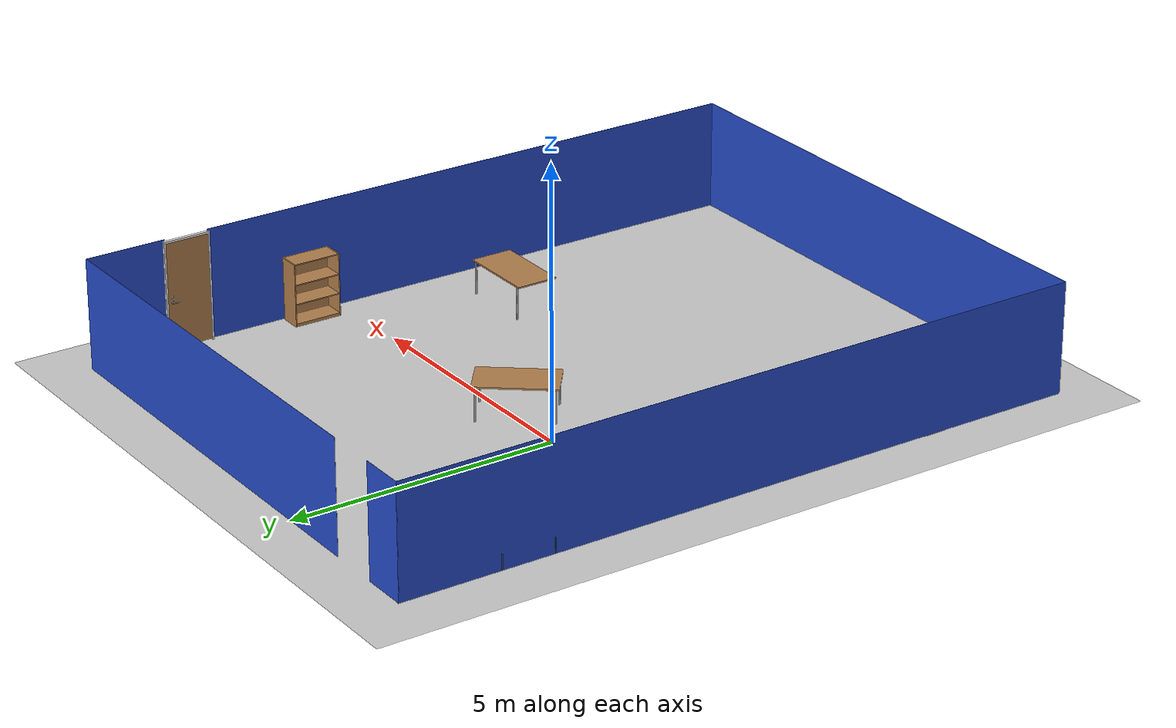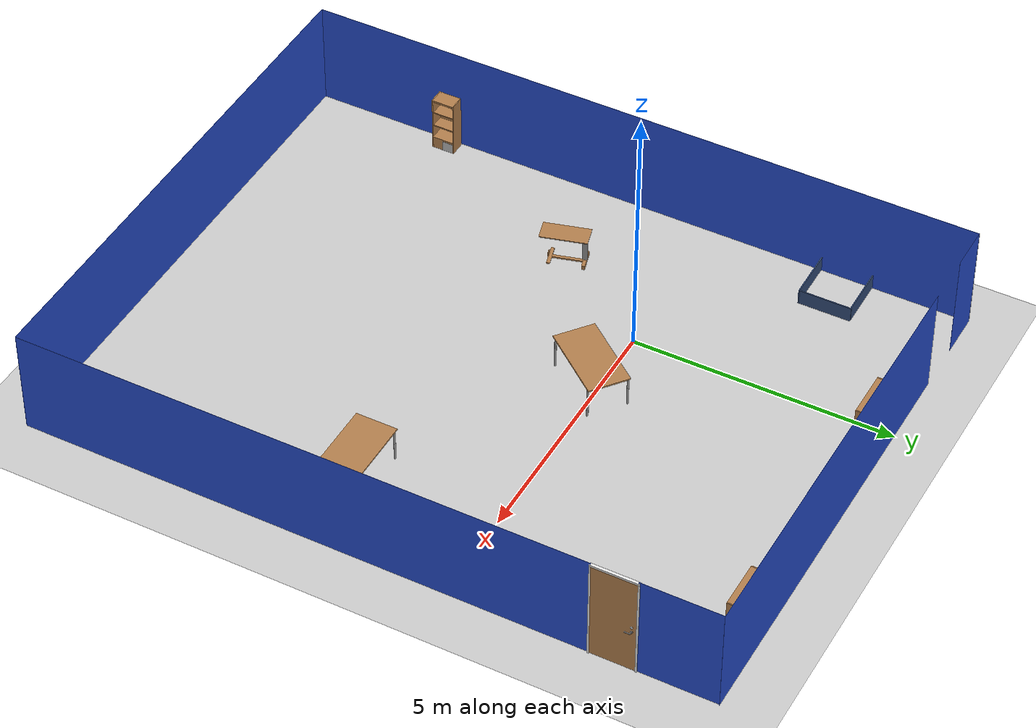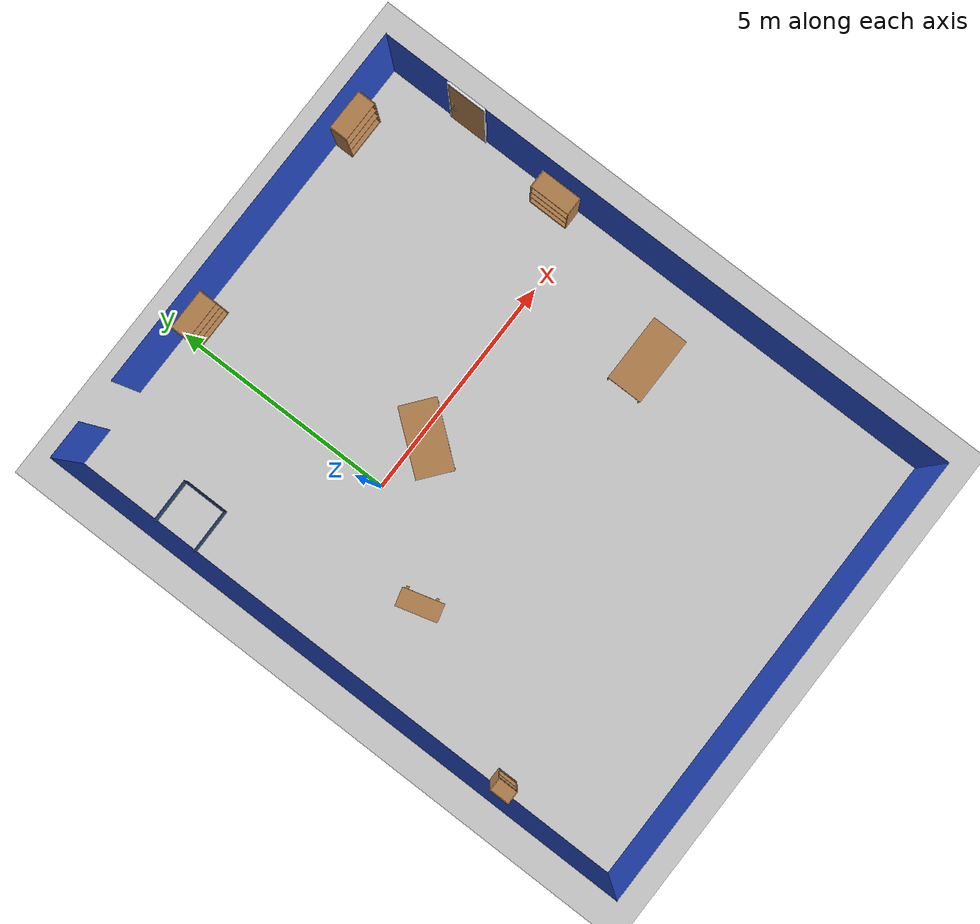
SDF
<sdf version="1.6">
 <world name="default">
  <light name="sun" type="directional">
   <pose>0 0 10 0 -0 0</pose>
   <diffuse>0.8 0.8 0.8 1</diffuse>
   <specular>0.2 0.2 0.2 1</specular>
   <attenuation>
    <range>1000</range>
    <constant>0.9</constant>
    <linear>0.01</linear>
    <quadratic>0.001</quadratic>
   </attenuation>
   <direction>-0.5 0.1 -0.9</direction>
  </light>
  <model name="ground_plane">
   <static>1</static>
   <link name="link">
    <collision name="collision">
     <geometry><plane><normal>0 0 1</normal><size>100 100</size></plane></geometry>
     <surface><friction><ode><mu>100</mu><mu2>50</mu2></ode></friction></surface>
    </collision>
    <visual name="visual">
     <cast_shadows>0</cast_shadows>
     <geometry><plane><normal>0 0 1</normal><size>100 100</size></plane></geometry>
     <material>
      <script><uri>file://media/materials/scripts/gazebo.material</uri><name>Gazebo/Grey</name></script>
     </material>
    </visual>
   </link>
  </model>
  <gravity>0 0 -9.8</gravity>
  <magnetic_field>6e-06 2.3e-05 -4.2e-05</magnetic_field>
  <atmosphere type="adiabatic"/>
  <physics name="default_physics" default="0" type="ode">
   <max_step_size>0.001</max_step_size>
   <real_time_factor>1</real_time_factor>
   <real_time_update_rate>1000</real_time_update_rate>
  </physics>
  <scene><ambient>0.4 0.4 0.4 1</ambient><background>0.7 0.7 0.7 1</background><shadows>1</shadows></scene>
  <spherical_coordinates>
   <surface_model>EARTH_WGS84</surface_model>
   <latitude_deg>0</latitude_deg>
   <longitude_deg>0</longitude_deg>
   <elevation>0</elevation>
   <heading_deg>0</heading_deg>
  </spherical_coordinates>
  <model name="door_55_900_2090">
   <link name="link">
    <pose>0 0.45 0 0 -0 0</pose>
    <inertial>
     <mass>50</mass>
     <inertia><ixx>1</ixx><ixy>0</ixy><ixz>0</ixz><iyy>1</iyy><iyz>0</iyz><izz>1</izz></inertia>
    </inertial>
    <visual name="door">
     <pose>0 0 1.05 0 -0 0</pose>
     <geometry><box><size>0.055 0.83 2</size></box></geometry>
     <material>
      <script><uri>model://base_materials/wood/scripts/wood.material</uri><name>base_materials/wood</name></script>
     </material>
    </visual>
    <collision name="collision_door">
     <pose>0 0 1.05 0 -0 0</pose>
     <geometry><box><size>0.055 0.83 2</size></box></geometry>
    </collision>
    <visual name="right_frame">
     <pose>0 0.4325 1.025 0 -0 0</pose>
     <geometry><box><size>0.055 0.035 2.05</size></box></geometry>
     <material>
      <script><uri>model://base_materials/color/scripts</uri><name>hsr_color/white</name></script>
     </material>
    </visual>
    <collision name="collision_right_frame">
     <pose>0 0.4325 1.025 0 -0 0</pose>
     <geometry><box><size>0.055 0.035 2.05</size></box></geometry>
    </collision>
    <visual name="left_frame">
     <pose>0 -0.4325 1.025 0 -0 0</pose>
     <geometry><box><size>0.055 0.035 2.05</size></box></geometry>
     <material>
      <script><uri>model://base_materials/color/scripts</uri><name>hsr_color/white</name></script>
     </material>
    </visual>
    <collision name="collision_left_frame">
     <pose>0 -0.4325 1.025 0 -0 0</pose>
     <geometry><box><size>0.055 0.035 2.05</size></box></geometry>
    </collision>
    <visual name="top_frame">
     <pose>0 0 2.07 0 -0 0</pose>
     <geometry><box><size>0.055 0.9 0.04</size></box></geometry>
     <material>
      <script><uri>model://base_materials/color/scripts</uri><name>hsr_color/white</name></script>
     </material>
    </visual>
    <collision name="collision_top_frame">
     <pose>0 0 2.07 0 -0 0</pose>
     <geometry><box><size>0.055 0.9 0.04</size></box></geometry>
    </collision>
    <visual name="handle_front">
     <pose>0.0775 0.285 0.93 1.5708 -0 0</pose>
     <geometry><cylinder><radius>0.01</radius><length>0.1</length></cylinder></geometry>
     <material>
      <script><uri>model://base_materials/color/scripts</uri><name>hsr_color/grey</name></script>
     </material>
    </visual>
    <collision name="collision_handle_front">
     <pose>0.0775 0.285 0.93 1.5708 -0 0</pose>
     <geometry><cylinder><radius>0.01</radius><length>0.1</length></cylinder></geometry>
    </collision>
    <visual name="handle_back">
     <pose>-0.0775 0.285 0.93 1.5708 -0 0</pose>
     <geometry><cylinder><radius>0.01</radius><length>0.1</length></cylinder></geometry>
     <material>
      <script><uri>model://base_materials/color/scripts</uri><name>hsr_color/grey</name></script>
     </material>
    </visual>
    <collision name="collision_handle_back">
     <pose>-0.0775 0.285 0.93 1.5708 -0 0</pose>
     <geometry><cylinder><radius>0.01</radius><length>0.1</length></cylinder></geometry>
    </collision>
    <visual name="handle_center1">
     <pose>0 0.335 0.93 3.14159 1.57079 3.14159</pose>
     <geometry><cylinder><radius>0.01</radius><length>0.155</length></cylinder></geometry>
     <material>
      <script><uri>model://base_materials/color/scripts</uri><name>hsr_color/grey</name></script>
     </material>
    </visual>
    <collision name="collision_center1">
     <pose>0 0.335 0.93 3.14159 1.57079 3.14159</pose>
     <geometry><cylinder><radius>0.01</radius><length>0.155</length></cylinder></geometry>
    </collision>
    <visual name="handle_center2">
     <pose>0 0.335 0.93 3.14159 1.57079 3.14159</pose>
     <geometry><cylinder><radius>0.025</radius><length>0.075</length></cylinder></geometry>
     <material>
      <script><uri>model://base_materials/color/scripts</uri><name>hsr_color/grey</name></script>
     </material>
    </visual>
    <collision name="collision_center1">
     <pose>0 0.335 0.93 3.14159 1.57079 3.14159</pose>
     <geometry><cylinder><radius>0.025</radius><length>0.075</length></cylinder></geometry>
    </collision>
    <visual name="handle_front_right_corner">
     <pose>0.0775 0.335 0.93 0 -0 0</pose>
     <geometry><sphere><radius>0.01</radius></sphere></geometry>
     <material>
      <script><uri>model://base_materials/color/scripts</uri><name>hsr_color/grey</name></script>
     </material>
    </visual>
    <collision name="collision_handle_front_right_corner">
     <pose>0.0775 0.335 0.93 0 -0 0</pose>
     <geometry><sphere><radius>0.01</radius></sphere></geometry>
    </collision>
    <visual name="handle_front_left_corner">
     <pose>0.0775 0.235 0.93 0 -0 0</pose>
     <geometry><sphere><radius>0.01</radius></sphere></geometry>
     <material>
      <script><uri>model://base_materials/color/scripts</uri><name>hsr_color/grey</name></script>
     </material>
    </visual>
    <collision name="collision_handle_front_left_corner">
     <pose>0.0775 0.235 0.93 0 -0 0</pose>
     <geometry><sphere><radius>0.01</radius></sphere></geometry>
    </collision>
    <visual name="handle_back_right_corner">
     <pose>-0.0775 0.335 0.93 0 -0 0</pose>
     <geometry><sphere><radius>0.01</radius></sphere></geometry>
     <material>
      <script><uri>model://base_materials/color/scripts</uri><name>hsr_color/grey</name></script>
     </material>
    </visual>
    <collision name="collision_handle_back_right_corner">
     <pose>-0.0775 0.335 0.93 0 -0 0</pose>
     <geometry><sphere><radius>0.01</radius></sphere></geometry>
    </collision>
    <visual name="handle_back_left_corner">
     <pose>-0.0775 0.235 0.93 0 -0 0</pose>
     <geometry><sphere><radius>0.01</radius></sphere></geometry>
     <material>
      <script><uri>model://base_materials/color/scripts</uri><name>hsr_color/white</name></script>
     </material>
    </visual>
    <collision name="collision_handle_back_left_corner">
     <pose>-0.0775 0.235 0.93 0 -0 0</pose>
     <geometry><sphere><radius>0.01</radius></sphere></geometry>
    </collision>
    <visual name="handle_lock1">
     <pose>0 0.335 1.03 0 -0 0</pose>
     <geometry><box><size>0.075 0.005 0.04</size></box></geometry>
     <material>
      <script><uri>model://base_materials/color/scripts</uri><name>hsr_color/white</name></script>
     </material>
    </visual>
    <collision name="collision_handle_lock1">
     <pose>0 0.335 1.03 0 -0 0</pose>
     <geometry><box><size>0.075 0.005 0.04</size></box></geometry>
    </collision>
    <visual name="handle_lock2">
     <pose>0 0.335 1.03 3.14159 1.57079 3.14159</pose>
     <geometry><cylinder><radius>0.025</radius><length>0.065</length></cylinder></geometry>
     <material>
      <script><uri>model://base_materials/color/scripts</uri><name>hsr_color/white</name></script>
     </material>
    </visual>
    <collision name="collision_handle_lock1">
     <pose>0 0.335 1.03 3.14159 1.57079 3.14159</pose>
     <geometry><cylinder><radius>0.025</radius><length>0.065</length></cylinder></geometry>
    </collision>
    <velocity_decay><linear>0</linear><angular>0</angular></velocity_decay>
   </link>
   <static>1</static>
   <pose>6.79644 2.61344 -0.041685 0 -0 0</pose>
  </model>
  <model name="hcr_shefl_2">
   <link name="link">
    <inertial>
     <mass>5</mass>
     <inertia><ixx>1</ixx><ixy>0</ixy><ixz>0</ixz><iyy>1</iyy><iyz>0</iyz><izz>1</izz></inertia>
    </inertial>
    <visual name="left_board">
     <pose>-0.1475 0.009 -0.598 0 -0 0</pose>
     <geometry><box><size>0.295 0.018 1.196</size></box></geometry>
     <material>
      <script><uri>model://base_materials/wood/scripts/wood.material</uri><name>base_materials/wood</name></script>
     </material>
    </visual>
    <collision name="collision_left_board">
     <pose>-0.1475 0.009 -0.598 0 -0 0</pose>
     <geometry><box><size>0.295 0.018 1.196</size></box></geometry>
    </collision>
    <visual name="right_board">
     <pose>-0.1475 0.441 -0.598 0 -0 0</pose>
     <geometry><box><size>0.295 0.018 1.196</size></box></geometry>
     <material>
      <script><uri>model://base_materials/wood/scripts/wood.material</uri><name>base_materials/wood</name></script>
     </material>
    </visual>
    <collision name="collision_right_board">
     <pose>-0.1475 0.441 -0.598 0 -0 0</pose>
     <geometry><box><size>0.295 0.018 1.196</size></box></geometry>
    </collision>
    <visual name="top_board">
     <pose>-0.1475 0.225 -0.0175 0 -0 0</pose>
     <geometry><box><size>0.295 0.414 0.035</size></box></geometry>
     <material>
      <script><uri>model://base_materials/wood/scripts/wood.material</uri><name>base_materials/wood</name></script>
     </material>
    </visual>
    <collision name="collision_top_board">
     <pose>-0.1475 0.225 -0.0175 0 -0 0</pose>
     <geometry><box><size>0.295 0.414 0.035</size></box></geometry>
    </collision>
    <visual name="1st_shelf">
     <pose>-0.162 0.225 -0.311 0 -0 0</pose>
     <geometry><box><size>0.266 0.414 0.018</size></box></geometry>
     <material>
      <script><uri>model://base_materials/wood/scripts/wood.material</uri><name>base_materials/wood</name></script>
     </material>
    </visual>
    <collision name="collision_1st_shelf">
     <pose>-0.162 0.225 -0.311 0 -0 0</pose>
     <geometry><box><size>0.266 0.414 0.018</size></box></geometry>
    </collision>
    <visual name="2nd_shelf">
     <pose>-0.162 0.225 -0.613 0 -0 0</pose>
     <geometry><box><size>0.266 0.414 0.018</size></box></geometry>
     <material>
      <script><uri>model://base_materials/wood/scripts/wood.material</uri><name>base_materials/wood</name></script>
     </material>
    </visual>
    <collision name="collision_2nd_shelf">
     <pose>-0.162 0.225 -0.613 0 -0 0</pose>
     <geometry><box><size>0.266 0.414 0.018</size></box></geometry>
    </collision>
    <visual name="bottom_board">
     <pose>-0.1475 0.225 -1.0335 0 -0 0</pose>
     <geometry><box><size>0.295 0.414 0.325</size></box></geometry>
     <material>
      <script><uri>model://base_materials/wood/scripts/wood.material</uri><name>base_materials/wood</name></script>
     </material>
    </visual>
    <collision name="collision_bottom_board">
     <pose>-0.1475 0.225 -1.0335 0 -0 0</pose>
     <geometry><box><size>0.295 0.414 0.325</size></box></geometry>
    </collision>
    <visual name="back_board">
     <pose>-0.286 0.225 -0.598 0 -0 0</pose>
     <geometry><box><size>0.018 0.414 1.196</size></box></geometry>
     <material>
      <script><uri>model://base_materials/wood/scripts/wood.material</uri><name>base_materials/wood</name></script>
     </material>
    </visual>
    <collision name="collision_back_board">
     <pose>-0.286 0.225 -0.598 0 -0 0</pose>
     <geometry><box><size>0.018 0.414 1.196</size></box></geometry>
    </collision>
    <visual name="marker_0030">
     <pose>0 0.32 -1.015 0 -0 0</pose>
     <geometry><box><size>0.0001 0.21 0.21</size></box></geometry>
     <material>
      <script>
       <uri>model://hcr_shelf_2/marker/0030/scripts</uri>
       <uri>model://hcr_shelf_2/marker/0030/textures</uri>
       <name>Marker/0030</name>
      </script>
     </material>
    </visual>
    <collision name="collision_marker_0030">
     <pose>0 0.32 -1.015 0 -0 0</pose>
     <geometry><box><size>0.0001 0.21 0.21</size></box></geometry>
    </collision>
    <velocity_decay><linear>0</linear><angular>0</angular></velocity_decay>
   </link>
   <static>1</static>
   <pose>-2.96206 -5.70339 1.09688 0 -0 0</pose>
  </model>
  <model name="bookshelf">
   <static>1</static>
   <link name="link">
    <inertial><mass>1</mass></inertial>
    <collision name="back">
     <pose>0 0.005 0.6 0 -0 0</pose>
     <geometry><box><size>0.9 0.01 1.2</size></box></geometry>
    </collision>
    <visual name="visual1">
     <pose>0 0.005 0.6 0 -0 0</pose>
     <geometry><box><size>0.9 0.01 1.2</size></box></geometry>
     <material>
      <script><uri>file://media/materials/scripts/gazebo.material</uri><name>Gazebo/Wood</name></script>
     </material>
    </visual>
    <collision name="left_side">
     <pose>0.45 -0.195 0.6 0 -0 0</pose>
     <geometry><box><size>0.02 0.4 1.2</size></box></geometry>
    </collision>
    <visual name="visual2">
     <pose>0.45 -0.195 0.6 0 -0 0</pose>
     <geometry><box><size>0.02 0.4 1.2</size></box></geometry>
     <material>
      <script><uri>file://media/materials/scripts/gazebo.material</uri><name>Gazebo/Wood</name></script>
     </material>
    </visual>
    <collision name="right_side">
     <pose>-0.45 -0.195 0.6 0 -0 0</pose>
     <geometry><box><size>0.02 0.4 1.2</size></box></geometry>
    </collision>
    <visual name="visual3">
     <pose>-0.45 -0.195 0.6 0 -0 0</pose>
     <geometry><box><size>0.02 0.4 1.2</size></box></geometry>
     <material>
      <script><uri>file://media/materials/scripts/gazebo.material</uri><name>Gazebo/Wood</name></script>
     </material>
    </visual>
    <collision name="bottom">
     <pose>0 -0.195 0.03 0 -0 0</pose>
     <geometry><box><size>0.88 0.4 0.06</size></box></geometry>
    </collision>
    <visual name="visual4">
     <pose>0 -0.195 0.03 0 -0 0</pose>
     <geometry><box><size>0.88 0.4 0.06</size></box></geometry>
     <material>
      <script><uri>file://media/materials/scripts/gazebo.material</uri><name>Gazebo/Wood</name></script>
     </material>
    </visual>
    <collision name="top">
     <pose>0 -0.195 1.19 0 -0 0</pose>
     <geometry><box><size>0.88 0.4 0.02</size></box></geometry>
    </collision>
    <visual name="visual5">
     <pose>0 -0.195 1.19 0 -0 0</pose>
     <geometry><box><size>0.88 0.4 0.02</size></box></geometry>
     <material>
      <script><uri>file://media/materials/scripts/gazebo.material</uri><name>Gazebo/Wood</name></script>
     </material>
    </visual>
    <collision name="low_shelf">
     <pose>0 -0.195 0.43 0 -0 0</pose>
     <geometry><box><size>0.88 0.4 0.02</size></box></geometry>
    </collision>
    <visual name="visual6">
     <pose>0 -0.195 0.43 0 -0 0</pose>
     <geometry><box><size>0.88 0.4 0.02</size></box></geometry>
     <material>
      <script><uri>file://media/materials/scripts/gazebo.material</uri><name>Gazebo/Wood</name></script>
     </material>
    </visual>
    <collision name="high_shelf">
     <pose>0 -0.195 0.8 0 -0 0</pose>
     <geometry><box><size>0.88 0.4 0.02</size></box></geometry>
    </collision>
    <visual name="visual7">
     <pose>0 -0.195 0.8 0 -0 0</pose>
     <geometry><box><size>0.88 0.4 0.02</size></box></geometry>
     <material>
      <script><uri>file://media/materials/scripts/gazebo.material</uri><name>Gazebo/Wood</name></script>
     </material>
    </visual>
   </link>
   <pose>0.419292 4.96703 0 0 -0 0</pose>
  </model>
  <model name="table">
   <static>1</static>
   <link name="link">
    <collision name="surface">
     <pose>0 0 1 0 -0 0</pose>
     <geometry><box><size>1.5 0.8 0.03</size></box></geometry>
     <surface><friction><ode><mu>0.6</mu><mu2>0.6</mu2></ode></friction></surface>
    </collision>
    <visual name="visual1">
     <pose>0 0 1 0 -0 0</pose>
     <geometry><box><size>1.5 0.8 0.03</size></box></geometry>
     <material>
      <script><uri>file://media/materials/scripts/gazebo.material</uri><name>Gazebo/Wood</name></script>
     </material>
    </visual>
    <collision name="front_left_leg">
     <pose>0.68 0.38 0.5 0 -0 0</pose>
     <geometry><cylinder><radius>0.02</radius><length>1</length></cylinder></geometry>
    </collision>
    <visual name="front_left_leg">
     <pose>0.68 0.38 0.5 0 -0 0</pose>
     <geometry><cylinder><radius>0.02</radius><length>1</length></cylinder></geometry>
     <material>
      <script><uri>file://media/materials/scripts/gazebo.material</uri><name>Gazebo/Grey</name></script>
     </material>
    </visual>
    <collision name="front_right_leg">
     <pose>0.68 -0.38 0.5 0 -0 0</pose>
     <geometry><cylinder><radius>0.02</radius><length>1</length></cylinder></geometry>
    </collision>
    <visual name="front_right_leg">
     <pose>0.68 -0.38 0.5 0 -0 0</pose>
     <geometry><cylinder><radius>0.02</radius><length>1</length></cylinder></geometry>
     <material>
      <script><uri>file://media/materials/scripts/gazebo.material</uri><name>Gazebo/Grey</name></script>
     </material>
    </visual>
    <collision name="back_right_leg">
     <pose>-0.68 -0.38 0.5 0 -0 0</pose>
     <geometry><cylinder><radius>0.02</radius><length>1</length></cylinder></geometry>
    </collision>
    <visual name="back_right_leg">
     <pose>-0.68 -0.38 0.5 0 -0 0</pose>
     <geometry><cylinder><radius>0.02</radius><length>1</length></cylinder></geometry>
     <material>
      <script><uri>file://media/materials/scripts/gazebo.material</uri><name>Gazebo/Grey</name></script>
     </material>
    </visual>
    <collision name="back_left_leg">
     <pose>-0.68 0.38 0.5 0 -0 0</pose>
     <geometry><cylinder><radius>0.02</radius><length>1</length></cylinder></geometry>
    </collision>
    <visual name="back_left_leg">
     <pose>-0.68 0.38 0.5 0 -0 0</pose>
     <geometry><cylinder><radius>0.02</radius><length>1</length></cylinder></geometry>
     <material>
      <script><uri>file://media/materials/scripts/gazebo.material</uri><name>Gazebo/Grey</name></script>
     </material>
    </visual>
   </link>
   <pose>1.2942 -0.166561 -0.380127 0 -0 0.901313</pose>
  </model>
  <model name="bookshelf_clone">
   <static>1</static>
   <link name="link">
    <inertial><mass>1</mass></inertial>
    <collision name="back">
     <pose>0 0.005 0.6 0 -0 0</pose>
     <geometry><box><size>0.9 0.01 1.2</size></box></geometry>
    </collision>
    <visual name="visual1">
     <pose>0 0.005 0.6 0 -0 0</pose>
     <geometry><box><size>0.9 0.01 1.2</size></box></geometry>
     <material>
      <script><uri>file://media/materials/scripts/gazebo.material</uri><name>Gazebo/Wood</name></script>
     </material>
    </visual>
    <collision name="left_side">
     <pose>0.45 -0.195 0.6 0 -0 0</pose>
     <geometry><box><size>0.02 0.4 1.2</size></box></geometry>
    </collision>
    <visual name="visual2">
     <pose>0.45 -0.195 0.6 0 -0 0</pose>
     <geometry><box><size>0.02 0.4 1.2</size></box></geometry>
     <material>
      <script><uri>file://media/materials/scripts/gazebo.material</uri><name>Gazebo/Wood</name></script>
     </material>
    </visual>
    <collision name="right_side">
     <pose>-0.45 -0.195 0.6 0 -0 0</pose>
     <geometry><box><size>0.02 0.4 1.2</size></box></geometry>
    </collision>
    <visual name="visual3">
     <pose>-0.45 -0.195 0.6 0 -0 0</pose>
     <geometry><box><size>0.02 0.4 1.2</size></box></geometry>
     <material>
      <script><uri>file://media/materials/scripts/gazebo.material</uri><name>Gazebo/Wood</name></script>
     </material>
    </visual>
    <collision name="bottom">
     <pose>0 -0.195 0.03 0 -0 0</pose>
     <geometry><box><size>0.88 0.4 0.06</size></box></geometry>
    </collision>
    <visual name="visual4">
     <pose>0 -0.195 0.03 0 -0 0</pose>
     <geometry><box><size>0.88 0.4 0.06</size></box></geometry>
     <material>
      <script><uri>file://media/materials/scripts/gazebo.material</uri><name>Gazebo/Wood</name></script>
     </material>
    </visual>
    <collision name="top">
     <pose>0 -0.195 1.19 0 -0 0</pose>
     <geometry><box><size>0.88 0.4 0.02</size></box></geometry>
    </collision>
    <visual name="visual5">
     <pose>0 -0.195 1.19 0 -0 0</pose>
     <geometry><box><size>0.88 0.4 0.02</size></box></geometry>
     <material>
      <script><uri>file://media/materials/scripts/gazebo.material</uri><name>Gazebo/Wood</name></script>
     </material>
    </visual>
    <collision name="low_shelf">
     <pose>0 -0.195 0.43 0 -0 0</pose>
     <geometry><box><size>0.88 0.4 0.02</size></box></geometry>
    </collision>
    <visual name="visual6">
     <pose>0 -0.195 0.43 0 -0 0</pose>
     <geometry><box><size>0.88 0.4 0.02</size></box></geometry>
     <material>
      <script><uri>file://media/materials/scripts/gazebo.material</uri><name>Gazebo/Wood</name></script>
     </material>
    </visual>
    <collision name="high_shelf">
     <pose>0 -0.195 0.8 0 -0 0</pose>
     <geometry><box><size>0.88 0.4 0.02</size></box></geometry>
    </collision>
    <visual name="visual7">
     <pose>0 -0.195 0.8 0 -0 0</pose>
     <geometry><box><size>0.88 0.4 0.02</size></box></geometry>
     <material>
      <script><uri>file://media/materials/scripts/gazebo.material</uri><name>Gazebo/Wood</name></script>
     </material>
    </visual>
   </link>
   <pose>5.35168 4.95429 0 0 -0 0</pose>
  </model>
  <model name="bookshelf_clone_0">
   <static>1</static>
   <link name="link">
    <inertial><mass>1</mass></inertial>
    <collision name="back">
     <pose>0 0.005 0.6 0 -0 0</pose>
     <geometry><box><size>0.9 0.01 1.2</size></box></geometry>
    </collision>
    <visual name="visual1">
     <pose>0 0.005 0.6 0 -0 0</pose>
     <geometry><box><size>0.9 0.01 1.2</size></box></geometry>
     <material>
      <script><uri>file://media/materials/scripts/gazebo.material</uri><name>Gazebo/Wood</name></script>
     </material>
    </visual>
    <collision name="left_side">
     <pose>0.45 -0.195 0.6 0 -0 0</pose>
     <geometry><box><size>0.02 0.4 1.2</size></box></geometry>
    </collision>
    <visual name="visual2">
     <pose>0.45 -0.195 0.6 0 -0 0</pose>
     <geometry><box><size>0.02 0.4 1.2</size></box></geometry>
     <material>
      <script><uri>file://media/materials/scripts/gazebo.material</uri><name>Gazebo/Wood</name></script>
     </material>
    </visual>
    <collision name="right_side">
     <pose>-0.45 -0.195 0.6 0 -0 0</pose>
     <geometry><box><size>0.02 0.4 1.2</size></box></geometry>
    </collision>
    <visual name="visual3">
     <pose>-0.45 -0.195 0.6 0 -0 0</pose>
     <geometry><box><size>0.02 0.4 1.2</size></box></geometry>
     <material>
      <script><uri>file://media/materials/scripts/gazebo.material</uri><name>Gazebo/Wood</name></script>
     </material>
    </visual>
    <collision name="bottom">
     <pose>0 -0.195 0.03 0 -0 0</pose>
     <geometry><box><size>0.88 0.4 0.06</size></box></geometry>
    </collision>
    <visual name="visual4">
     <pose>0 -0.195 0.03 0 -0 0</pose>
     <geometry><box><size>0.88 0.4 0.06</size></box></geometry>
     <material>
      <script><uri>file://media/materials/scripts/gazebo.material</uri><name>Gazebo/Wood</name></script>
     </material>
    </visual>
    <collision name="top">
     <pose>0 -0.195 1.19 0 -0 0</pose>
     <geometry><box><size>0.88 0.4 0.02</size></box></geometry>
    </collision>
    <visual name="visual5">
     <pose>0 -0.195 1.19 0 -0 0</pose>
     <geometry><box><size>0.88 0.4 0.02</size></box></geometry>
     <material>
      <script><uri>file://media/materials/scripts/gazebo.material</uri><name>Gazebo/Wood</name></script>
     </material>
    </visual>
    <collision name="low_shelf">
     <pose>0 -0.195 0.43 0 -0 0</pose>
     <geometry><box><size>0.88 0.4 0.02</size></box></geometry>
    </collision>
    <visual name="visual6">
     <pose>0 -0.195 0.43 0 -0 0</pose>
     <geometry><box><size>0.88 0.4 0.02</size></box></geometry>
     <material>
      <script><uri>file://media/materials/scripts/gazebo.material</uri><name>Gazebo/Wood</name></script>
     </material>
    </visual>
    <collision name="high_shelf">
     <pose>0 -0.195 0.8 0 -0 0</pose>
     <geometry><box><size>0.88 0.4 0.02</size></box></geometry>
    </collision>
    <visual name="visual7">
     <pose>0 -0.195 0.8 0 -0 0</pose>
     <geometry><box><size>0.88 0.4 0.02</size></box></geometry>
     <material>
      <script><uri>file://media/materials/scripts/gazebo.material</uri><name>Gazebo/Wood</name></script>
     </material>
    </visual>
   </link>
   <pose>6.75738 0.730992 0 0 0 -1.5707</pose>
  </model>
  <model name="table_clone">
   <static>1</static>
   <link name="link">
    <collision name="surface">
     <pose>0 0 1 0 -0 0</pose>
     <geometry><box><size>1.5 0.8 0.03</size></box></geometry>
     <surface><friction><ode><mu>0.6</mu><mu2>0.6</mu2></ode></friction></surface>
    </collision>
    <visual name="visual1">
     <pose>0 0 1 0 -0 0</pose>
     <geometry><box><size>1.5 0.8 0.03</size></box></geometry>
     <material>
      <script><uri>file://media/materials/scripts/gazebo.material</uri><name>Gazebo/Wood</name></script>
     </material>
    </visual>
    <collision name="front_left_leg">
     <pose>0.68 0.38 0.5 0 -0 0</pose>
     <geometry><cylinder><radius>0.02</radius><length>1</length></cylinder></geometry>
    </collision>
    <visual name="front_left_leg">
     <pose>0.68 0.38 0.5 0 -0 0</pose>
     <geometry><cylinder><radius>0.02</radius><length>1</length></cylinder></geometry>
     <material>
      <script><uri>file://media/materials/scripts/gazebo.material</uri><name>Gazebo/Grey</name></script>
     </material>
    </visual>
    <collision name="front_right_leg">
     <pose>0.68 -0.38 0.5 0 -0 0</pose>
     <geometry><cylinder><radius>0.02</radius><length>1</length></cylinder></geometry>
    </collision>
    <visual name="front_right_leg">
     <pose>0.68 -0.38 0.5 0 -0 0</pose>
     <geometry><cylinder><radius>0.02</radius><length>1</length></cylinder></geometry>
     <material>
      <script><uri>file://media/materials/scripts/gazebo.material</uri><name>Gazebo/Grey</name></script>
     </material>
    </visual>
    <collision name="back_right_leg">
     <pose>-0.68 -0.38 0.5 0 -0 0</pose>
     <geometry><cylinder><radius>0.02</radius><length>1</length></cylinder></geometry>
    </collision>
    <visual name="back_right_leg">
     <pose>-0.68 -0.38 0.5 0 -0 0</pose>
     <geometry><cylinder><radius>0.02</radius><length>1</length></cylinder></geometry>
     <material>
      <script><uri>file://media/materials/scripts/gazebo.material</uri><name>Gazebo/Grey</name></script>
     </material>
    </visual>
    <collision name="back_left_leg">
     <pose>-0.68 0.38 0.5 0 -0 0</pose>
     <geometry><cylinder><radius>0.02</radius><length>1</length></cylinder></geometry>
    </collision>
    <visual name="back_left_leg">
     <pose>-0.68 0.38 0.5 0 -0 0</pose>
     <geometry><cylinder><radius>0.02</radius><length>1</length></cylinder></geometry>
     <material>
      <script><uri>file://media/materials/scripts/gazebo.material</uri><name>Gazebo/Grey</name></script>
     </material>
    </visual>
   </link>
   <pose>5.16052 -2.64347 -0.380127 0 -0 0</pose>
  </model>
  <model name="bed_table">
   <link name="link">
    <inertial>
     <pose>0 0.449 0.001 0 -0 0</pose>
     <mass>10</mass>
     <inertia><ixx>1</ixx><ixy>0</ixy><ixz>0</ixz><iyy>1</iyy><iyz>0</iyz><izz>1</izz></inertia>
    </inertial>
    <visual name="top_board">
     <pose>0 0.449 0.625 0 -0 0</pose>
     <geometry><box><size>0.398 0.898 0.02</size></box></geometry>
     <material>
      <script><uri>model://base_materials/wood/scripts/wood.material</uri><name>base_materials/wood</name></script>
     </material>
    </visual>
    <collision name="collision_top_board">
     <pose>0 0.449 0.625 0 -0 0</pose>
     <geometry><box><size>0.398 0.898 0.02</size></box></geometry>
    </collision>
    <visual name="right_pole">
     <pose>0 0.817 0.3515 0 -0 0</pose>
     <geometry><box><size>0.072 0.094 0.527</size></box></geometry>
     <material>
      <script><uri>model://base_materials/color/scripts</uri><name>hsr_color/grey</name></script>
     </material>
    </visual>
    <collision name="collision_right_pole">
     <pose>0 0.817 0.3515 0 -0 0</pose>
     <geometry><box><size>0.072 0.094 0.527</size></box></geometry>
    </collision>
    <visual name="right_bottom_pole">
     <pose>0 0.8225 0.044 0 -0 0</pose>
     <geometry><box><size>0.42 0.063 0.088</size></box></geometry>
     <material>
      <script><uri>model://base_materials/wood/scripts/wood.material</uri><name>base_materials/wood</name></script>
     </material>
    </visual>
    <collision name="collision_right_bottom_pole">
     <pose>0 0.8225 0.044 0 -0 0</pose>
     <geometry><box><size>0.42 0.063 0.088</size></box></geometry>
    </collision>
    <visual name="bottom_center_pole">
     <pose>0 0.502 0.03 0 -0 0</pose>
     <geometry><box><size>0.06 0.578 0.03</size></box></geometry>
     <material>
      <script><uri>model://base_materials/wood/scripts/wood.material</uri><name>base_materials/wood</name></script>
     </material>
    </visual>
    <collision name="collision_bottom_center_pole">
     <pose>0 0.502 0.03 0 -0 0</pose>
     <geometry><box><size>0.06 0.578 0.03</size></box></geometry>
    </collision>
    <visual name="left_bottom_pole">
     <pose>0 0.18 0.0325 0 -0 0</pose>
     <geometry><box><size>0.418 0.066 0.025</size></box></geometry>
     <material>
      <script><uri>model://base_materials/wood/scripts/wood.material</uri><name>base_materials/wood</name></script>
     </material>
    </visual>
    <collision name="collision_left_bottom_pole">
     <pose>0 0.18 0.0325 0 -0 0</pose>
     <geometry><box><size>0.418 0.066 0.025</size></box></geometry>
    </collision>
    <visual name="marker_0010">
     <pose>0 0.14 0.093 0 -0 0</pose>
     <geometry><box><size>0.09 0.001 0.09</size></box></geometry>
     <material>
      <script>
       <uri>model://bed_table/marker/0010/scripts</uri>
       <uri>model://bed_table/marker/0010/textures</uri>
       <name>Marker/0010</name>
      </script>
     </material>
    </visual>
    <collision name="collision_marker_0010">
     <pose>0 0.14 0.093 0 -0 0</pose>
     <geometry><box><size>0.09 0.001 0.09</size></box></geometry>
    </collision>
    <visual name="marker_0010_back_plate">
     <pose>0 0.146 0.093 0 -0 0</pose>
     <geometry><box><size>0.09 0.01 0.09</size></box></geometry>
     <material>
      <script><uri>model://base_materials/wood/scripts/wood.material</uri><name>base_materials/wood</name></script>
     </material>
    </visual>
    <collision name="collision_marker_0010_back_plate">
     <pose>0 0.146 0.093 0 -0 0</pose>
     <geometry><box><size>0.09 0.01 0.09</size></box></geometry>
    </collision>
    <velocity_decay><linear>0</linear><angular>0</angular></velocity_decay>
   </link>
   <static>1</static>
   <pose>-1.21832 -2.49117 0 0 -0 0.272851</pose>
  </model>
  <model name="low_wall">
   <link name="link">
    <inertial>
     <mass>50</mass>
     <inertia><ixx>1</ixx><ixy>0</ixy><ixz>0</ixz><iyy>1</iyy><iyz>0</iyz><izz>1</izz></inertia>
    </inertial>
    <visual name="wall">
     <pose>0 0 0.15 0 -0 0</pose>
     <geometry><box><size>0.02 1 0.3</size></box></geometry>
     <material>
      <ambient>0.392 0.584 0.929 1</ambient>
      <diffuse>0.196 0.292 0.4645 1</diffuse>
      <specular>0 0 0 1</specular>
     </material>
    </visual>
    <collision name="collision_wall">
     <pose>0 0 0.15 0 -0 0</pose>
     <geometry><box><size>0.02 1 0.3</size></box></geometry>
    </collision>
    <velocity_decay><linear>0</linear><angular>0</angular></velocity_decay>
   </link>
   <static>1</static>
   <pose>-2.29067 2.63547 0 0 -0 0</pose>
  </model>
  <model name="low_wall_0">
   <link name="link">
    <inertial>
     <mass>50</mass>
     <inertia><ixx>1</ixx><ixy>0</ixy><ixz>0</ixz><iyy>1</iyy><iyz>0</iyz><izz>1</izz></inertia>
    </inertial>
    <visual name="wall">
     <pose>0 0 0.15 0 -0 0</pose>
     <geometry><box><size>0.02 1 0.3</size></box></geometry>
     <material>
      <ambient>0.392 0.584 0.929 1</ambient>
      <diffuse>0.196 0.292 0.4645 1</diffuse>
      <specular>0 0 0 1</specular>
     </material>
    </visual>
    <collision name="collision_wall">
     <pose>0 0 0.15 0 -0 0</pose>
     <geometry><box><size>0.02 1 0.3</size></box></geometry>
    </collision>
    <velocity_decay><linear>0</linear><angular>0</angular></velocity_decay>
   </link>
   <static>1</static>
   <pose>-2.78049 2.12275 0 0 0 -1.56043</pose>
  </model>
  <model name="low_wall_0_clone">
   <link name="link">
    <inertial>
     <mass>50</mass>
     <inertia><ixx>1</ixx><ixy>0</ixy><ixz>0</ixz><iyy>1</iyy><iyz>0</iyz><izz>1</izz></inertia>
    </inertial>
    <visual name="wall">
     <pose>0 0 0.15 0 -0 0</pose>
     <geometry><box><size>0.02 1 0.3</size></box></geometry>
     <material>
      <ambient>0.392 0.584 0.929 1</ambient>
      <diffuse>0.196 0.292 0.4645 1</diffuse>
      <specular>0 0 0 1</specular>
     </material>
    </visual>
    <collision name="collision_wall">
     <pose>0 0 0.15 0 -0 0</pose>
     <geometry><box><size>0.02 1 0.3</size></box></geometry>
    </collision>
    <velocity_decay><linear>0</linear><angular>0</angular></velocity_decay>
   </link>
   <static>1</static>
   <pose>-2.78086 3.11946 0 0 0 -1.56043</pose>
  </model>
  <audio><device>default</device></audio>
  <model name="apartment_wall_collision">
   <link name="link">
    <inertial>
     <mass>50</mass>
     <inertia><ixx>1</ixx><ixy>0</ixy><ixz>0</ixz><iyy>1</iyy><iyz>0</iyz><izz>1</izz></inertia>
    </inertial>
    <velocity_decay><linear>0</linear><angular>0</angular></velocity_decay>
    <visual name="wall_x00y00_x00y15">
     <pose>-0.002 6.59 1.04 0 -0 0</pose>
     <geometry><box><size>0.002 13.2 2.08</size></box></geometry>
     <material>
      <script>
       <uri>model://base_materials/color/scripts</uri>
       <name>hsr_color/cornflowerblue_transparency1</name>
      </script>
      <shader type="pixel"><normal_map>__default__</normal_map></shader>
      <ambient>0.392 0.584 0.929 1</ambient>
      <diffuse>0.196 0.292 0.465 1</diffuse>
      <specular>0 0 0 1</specular>
      <emissive>0 0 0 1</emissive>
     </material>
    </visual>
    <visual name="wall_x00y00_x13y00">
     <pose>5.0375 -0.002 1.04 0 -0 0</pose>
     <geometry><box><size>10.08 0.002 2.08</size></box></geometry>
     <material>
      <script>
       <uri>model://base_materials/color/scripts</uri>
       <name>hsr_color/cornflowerblue_transparency1</name>
      </script>
      <shader type="pixel"><normal_map>__default__</normal_map></shader>
      <ambient>0.392 0.584 0.929 1</ambient>
      <diffuse>0.196 0.292 0.465 1</diffuse>
      <specular>0 0 0 1</specular>
      <emissive>0 0 0 1</emissive>
     </material>
    </visual>
    <visual name="wall_x13y00_x13y12">
     <pose>10.077 5.42 1.04 0 -0 0</pose>
     <geometry><box><size>0.002 10.84 2.08</size></box></geometry>
     <material>
      <script>
       <uri>model://base_materials/color/scripts</uri>
       <name>hsr_color/cornflowerblue_transparency1</name>
      </script>
      <shader type="pixel"><normal_map>__default__</normal_map></shader>
      <ambient>0.392 0.584 0.929 1</ambient>
      <diffuse>0.196 0.292 0.465 1</diffuse>
      <specular>0 0 0 1</specular>
      <emissive>0 0 0 1</emissive>
     </material>
    </visual>
    <visual name="wall_x13y14_x13y16">
     <pose>10.077 12.43 1.04 0 -0 0</pose>
     <geometry><box><size>0.002 1.5 2.08</size></box></geometry>
     <material>
      <script>
       <uri>model://base_materials/color/scripts</uri>
       <name>hsr_color/cornflowerblue_transparency1</name>
      </script>
      <shader type="pixel"><normal_map>__default__</normal_map></shader>
      <ambient>0.392 0.584 0.929 1</ambient>
      <diffuse>0.196 0.292 0.465 1</diffuse>
      <specular>0 0 0 1</specular>
      <emissive>0 0 0 1</emissive>
     </material>
    </visual>
    <visual name="wall_x00y16_x01y16">
     <pose>0.4225 13.182 1.04 0 -0 0</pose>
     <geometry><box><size>0.854 0.002 2.08</size></box></geometry>
     <material>
      <script>
       <uri>model://base_materials/color/scripts</uri>
       <name>hsr_color/cornflowerblue_transparency1</name>
      </script>
      <shader type="pixel"><normal_map>__default__</normal_map></shader>
      <ambient>0.392 0.584 0.929 1</ambient>
      <diffuse>0.196 0.292 0.465 1</diffuse>
      <specular>0 0 0 1</specular>
      <emissive>0 0 0 1</emissive>
     </material>
    </visual>
    <visual name="wall_x03y16_x13y16">
     <pose>5.948 13.182 1.04 0 -0 0</pose>
     <geometry><box><size>8.3 0.002 2.08</size></box></geometry>
     <material>
      <script>
       <uri>model://base_materials/color/scripts</uri>
       <name>hsr_color/cornflowerblue_transparency1</name>
      </script>
      <shader type="pixel"><normal_map>__default__</normal_map></shader>
      <ambient>0.392 0.584 0.929 1</ambient>
      <diffuse>0.196 0.292 0.465 1</diffuse>
      <specular>0 0 0 1</specular>
      <emissive>0 0 0 1</emissive>
     </material>
    </visual>
    <collision name="wall_x00y00_x00y15">
     <pose>-0.002 6.59 1.04 0 -0 0</pose>
     <geometry><box><size>0.002 13.2 2.08</size></box></geometry>
     <surface>
      <friction>
       <ode><mu>1</mu><mu2>1</mu2><fdir1>0 0 0</fdir1><slip1>0</slip1><slip2>0</slip2></ode>
       <torsional>
        <coefficient>1</coefficient>
        <patch_radius>0</patch_radius>
        <surface_radius>0</surface_radius>
        <use_patch_radius>1</use_patch_radius>
        <ode><slip>0</slip></ode>
       </torsional>
      </friction>
      <bounce><restitution_coefficient>0</restitution_coefficient><threshold>1e+06</threshold></bounce>
      <contact>
       <collide_without_contact>0</collide_without_contact>
       <collide_without_contact_bitmask>1</collide_without_contact_bitmask>
       <collide_bitmask>1</collide_bitmask>
       <ode>
        <soft_cfm>0</soft_cfm>
        <soft_erp>0.2</soft_erp>
        <kp>1e+13</kp>
        <kd>1</kd>
        <max_vel>0.01</max_vel>
        <min_depth>0</min_depth>
       </ode>
       <bullet>
        <split_impulse>1</split_impulse>
        <split_impulse_penetration_threshold>-0.01</split_impulse_penetration_threshold>
        <soft_cfm>0</soft_cfm>
        <soft_erp>0.2</soft_erp>
        <kp>1e+13</kp>
        <kd>1</kd>
       </bullet>
      </contact>
     </surface>
    </collision>
    <collision name="wall_x00y00_x13y00">
     <pose>5.0375 -0.002 1.04 0 -0 0</pose>
     <geometry><box><size>10.08 0.002 2.08</size></box></geometry>
     <surface>
      <friction>
       <ode><mu>1</mu><mu2>1</mu2><fdir1>0 0 0</fdir1><slip1>0</slip1><slip2>0</slip2></ode>
       <torsional>
        <coefficient>1</coefficient>
        <patch_radius>0</patch_radius>
        <surface_radius>0</surface_radius>
        <use_patch_radius>1</use_patch_radius>
        <ode><slip>0</slip></ode>
       </torsional>
      </friction>
      <bounce><restitution_coefficient>0</restitution_coefficient><threshold>1e+06</threshold></bounce>
      <contact>
       <collide_without_contact>0</collide_without_contact>
       <collide_without_contact_bitmask>1</collide_without_contact_bitmask>
       <collide_bitmask>1</collide_bitmask>
       <ode>
        <soft_cfm>0</soft_cfm>
        <soft_erp>0.2</soft_erp>
        <kp>1e+13</kp>
        <kd>1</kd>
        <max_vel>0.01</max_vel>
        <min_depth>0</min_depth>
       </ode>
       <bullet>
        <split_impulse>1</split_impulse>
        <split_impulse_penetration_threshold>-0.01</split_impulse_penetration_threshold>
        <soft_cfm>0</soft_cfm>
        <soft_erp>0.2</soft_erp>
        <kp>1e+13</kp>
        <kd>1</kd>
       </bullet>
      </contact>
     </surface>
    </collision>
    <collision name="wall_x13y00_x13y12">
     <pose>10.077 5.42 1.04 0 -0 0</pose>
     <geometry><box><size>0.002 10.84 2.08</size></box></geometry>
     <surface>
      <friction>
       <ode><mu>1</mu><mu2>1</mu2><fdir1>0 0 0</fdir1><slip1>0</slip1><slip2>0</slip2></ode>
       <torsional>
        <coefficient>1</coefficient>
        <patch_radius>0</patch_radius>
        <surface_radius>0</surface_radius>
        <use_patch_radius>1</use_patch_radius>
        <ode><slip>0</slip></ode>
       </torsional>
      </friction>
      <bounce><restitution_coefficient>0</restitution_coefficient><threshold>1e+06</threshold></bounce>
      <contact>
       <collide_without_contact>0</collide_without_contact>
       <collide_without_contact_bitmask>1</collide_without_contact_bitmask>
       <collide_bitmask>1</collide_bitmask>
       <ode>
        <soft_cfm>0</soft_cfm>
        <soft_erp>0.2</soft_erp>
        <kp>1e+13</kp>
        <kd>1</kd>
        <max_vel>0.01</max_vel>
        <min_depth>0</min_depth>
       </ode>
       <bullet>
        <split_impulse>1</split_impulse>
        <split_impulse_penetration_threshold>-0.01</split_impulse_penetration_threshold>
        <soft_cfm>0</soft_cfm>
        <soft_erp>0.2</soft_erp>
        <kp>1e+13</kp>
        <kd>1</kd>
       </bullet>
      </contact>
     </surface>
    </collision>
    <collision name="wall_x13y14_x13y16">
     <pose>10.077 12.43 1.04 0 -0 0</pose>
     <geometry><box><size>0.002 1.5 2.08</size></box></geometry>
     <surface>
      <friction>
       <ode><mu>1</mu><mu2>1</mu2><fdir1>0 0 0</fdir1><slip1>0</slip1><slip2>0</slip2></ode>
       <torsional>
        <coefficient>1</coefficient>
        <patch_radius>0</patch_radius>
        <surface_radius>0</surface_radius>
        <use_patch_radius>1</use_patch_radius>
        <ode><slip>0</slip></ode>
       </torsional>
      </friction>
      <bounce><restitution_coefficient>0</restitution_coefficient><threshold>1e+06</threshold></bounce>
      <contact>
       <collide_without_contact>0</collide_without_contact>
       <collide_without_contact_bitmask>1</collide_without_contact_bitmask>
       <collide_bitmask>1</collide_bitmask>
       <ode>
        <soft_cfm>0</soft_cfm>
        <soft_erp>0.2</soft_erp>
        <kp>1e+13</kp>
        <kd>1</kd>
        <max_vel>0.01</max_vel>
        <min_depth>0</min_depth>
       </ode>
       <bullet>
        <split_impulse>1</split_impulse>
        <split_impulse_penetration_threshold>-0.01</split_impulse_penetration_threshold>
        <soft_cfm>0</soft_cfm>
        <soft_erp>0.2</soft_erp>
        <kp>1e+13</kp>
        <kd>1</kd>
       </bullet>
      </contact>
     </surface>
    </collision>
    <collision name="wall_x00y16_x01y16">
     <pose>0.4225 13.182 1.04 0 -0 0</pose>
     <geometry><box><size>0.854 0.002 2.08</size></box></geometry>
     <surface>
      <friction>
       <ode><mu>1</mu><mu2>1</mu2><fdir1>0 0 0</fdir1><slip1>0</slip1><slip2>0</slip2></ode>
       <torsional>
        <coefficient>1</coefficient>
        <patch_radius>0</patch_radius>
        <surface_radius>0</surface_radius>
        <use_patch_radius>1</use_patch_radius>
        <ode><slip>0</slip></ode>
       </torsional>
      </friction>
      <bounce><restitution_coefficient>0</restitution_coefficient><threshold>1e+06</threshold></bounce>
      <contact>
       <collide_without_contact>0</collide_without_contact>
       <collide_without_contact_bitmask>1</collide_without_contact_bitmask>
       <collide_bitmask>1</collide_bitmask>
       <ode>
        <soft_cfm>0</soft_cfm>
        <soft_erp>0.2</soft_erp>
        <kp>1e+13</kp>
        <kd>1</kd>
        <max_vel>0.01</max_vel>
        <min_depth>0</min_depth>
       </ode>
       <bullet>
        <split_impulse>1</split_impulse>
        <split_impulse_penetration_threshold>-0.01</split_impulse_penetration_threshold>
        <soft_cfm>0</soft_cfm>
        <soft_erp>0.2</soft_erp>
        <kp>1e+13</kp>
        <kd>1</kd>
       </bullet>
      </contact>
     </surface>
    </collision>
    <collision name="wall_x03y16_x13y16">
     <pose>5.948 13.182 1.04 0 -0 0</pose>
     <geometry><box><size>8.3 0.002 2.08</size></box></geometry>
     <surface>
      <friction>
       <ode><mu>1</mu><mu2>1</mu2><fdir1>0 0 0</fdir1><slip1>0</slip1><slip2>0</slip2></ode>
       <torsional>
        <coefficient>1</coefficient>
        <patch_radius>0</patch_radius>
        <surface_radius>0</surface_radius>
        <use_patch_radius>1</use_patch_radius>
        <ode><slip>0</slip></ode>
       </torsional>
      </friction>
      <bounce><restitution_coefficient>0</restitution_coefficient><threshold>1e+06</threshold></bounce>
      <contact>
       <collide_without_contact>0</collide_without_contact>
       <collide_without_contact_bitmask>1</collide_without_contact_bitmask>
       <collide_bitmask>1</collide_bitmask>
       <ode>
        <soft_cfm>0</soft_cfm>
        <soft_erp>0.2</soft_erp>
        <kp>1e+13</kp>
        <kd>1</kd>
        <max_vel>0.01</max_vel>
        <min_depth>0</min_depth>
       </ode>
       <bullet>
        <split_impulse>1</split_impulse>
        <split_impulse_penetration_threshold>-0.01</split_impulse_penetration_threshold>
        <soft_cfm>0</soft_cfm>
        <soft_erp>0.2</soft_erp>
        <kp>1e+13</kp>
        <kd>1</kd>
       </bullet>
      </contact>
     </surface>
    </collision>
   </link>
   <static>1</static>
   <pose>-3.26861 -8.19915 0 0 -0 0</pose>
  </model>
 </world>
</sdf>
